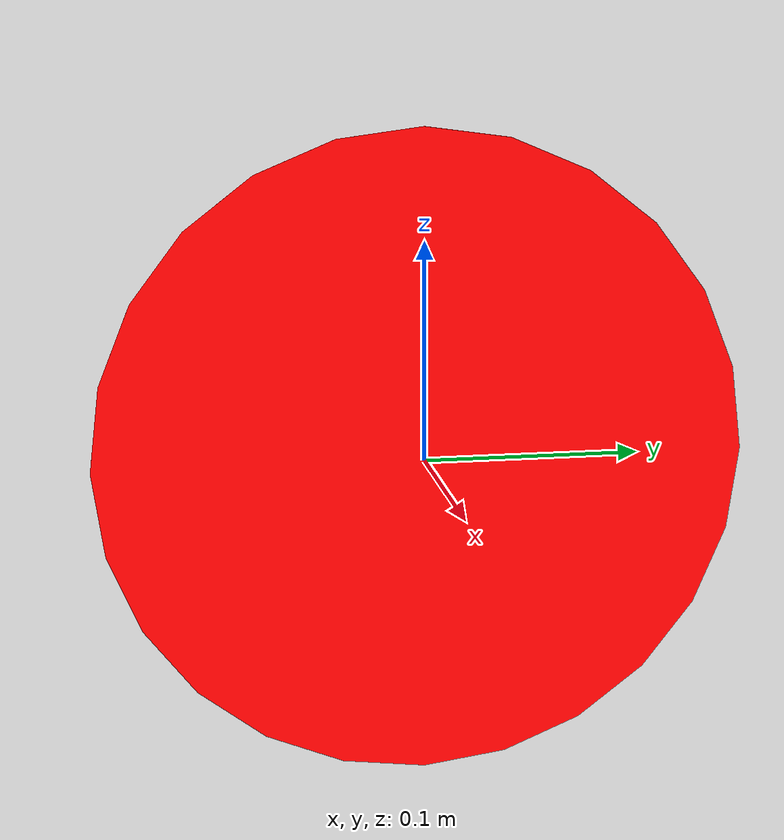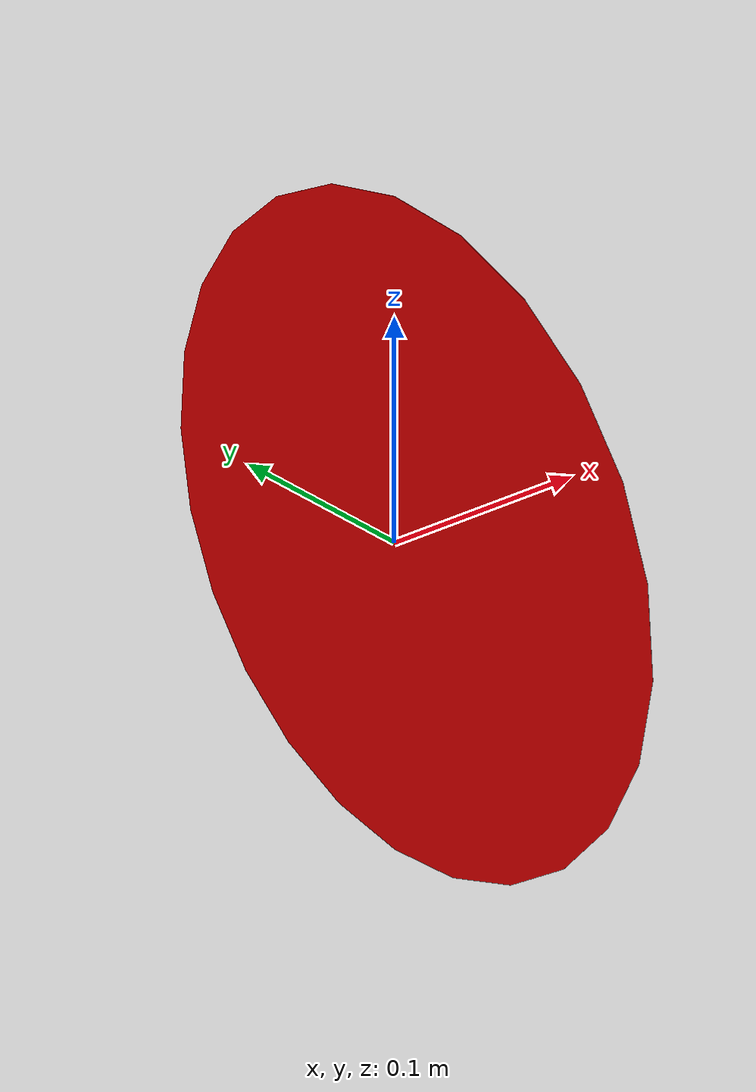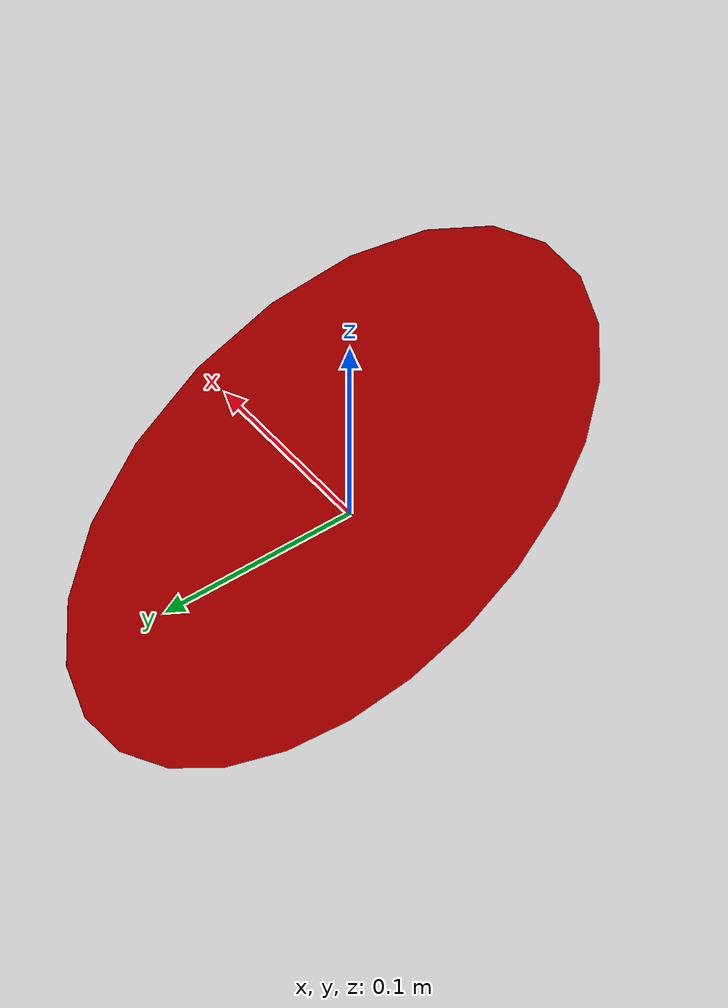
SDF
<?xml version="1.0"?>
<sdf version="1.6">                                <!-- consulta: http://sdformat.org/spec -->
  <model name="circular_object">                   <!--assegna questo nome al model che viene inserito nel world-->
    <static>true</static>                          <!-- oggetto statico: non si muove. In questo modo preveniamo la caduta per effetto della gravità -->
    <link name="link">
      <inertial>
        <pose>0 0 0 0 1.57 0</pose>                <!--il cilindro di default è ruotato con le circonferenze verso l'alto e il basso-->
        <mass>0.001</mass>

        <inertia>
          <ixx>3.7499999999999997e-06</ixx>
          <ixy>0.0</ixy>
          <ixz>0.0</ixz>
          <iyy>1.8750008333333333e-06</iyy>
          <iyz>0.0</iyz>
          <izz>1.8750008333333333e-06</izz>
        </inertia>
      </inertial>

      <visual name="visual">
        <pose>0 0 0 0 1.57 0</pose>                <!--il cilindro di default è ruotato con le circonferenze verso l'alto e il basso-->
        <geometry>
          <cylinder>
            <radius>0.15</radius>                  <!-- in metri -->
            <length>0.0001</length>
          </cylinder>
        </geometry>
        <material>
          <ambient>1 0 0 1</ambient>               <!--colore: rosso opaco -->
        </material>
      </visual>

      <collision name="collision">
        <pose>0 0 0 0 1.57 0</pose>                <!--il cilindro di default è ruotato con le circonferenze verso l'alto e il basso-->
        <geometry>
          <cylinder>
            <radius>0.15</radius>
            <length>0.0001</length>
          </cylinder>
        </geometry>
      </collision>

    </link>
  </model>
</sdf>
